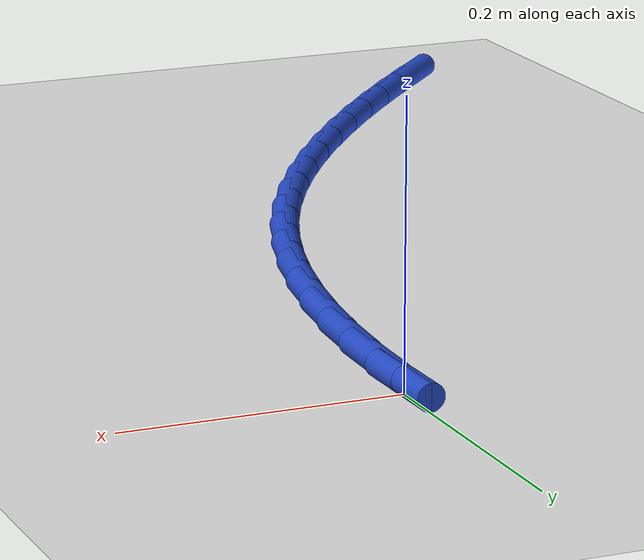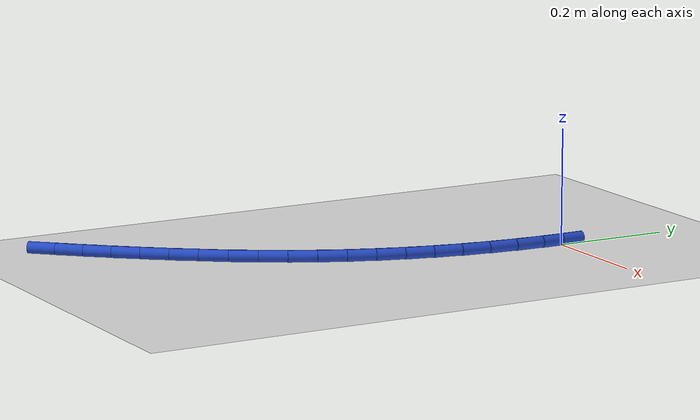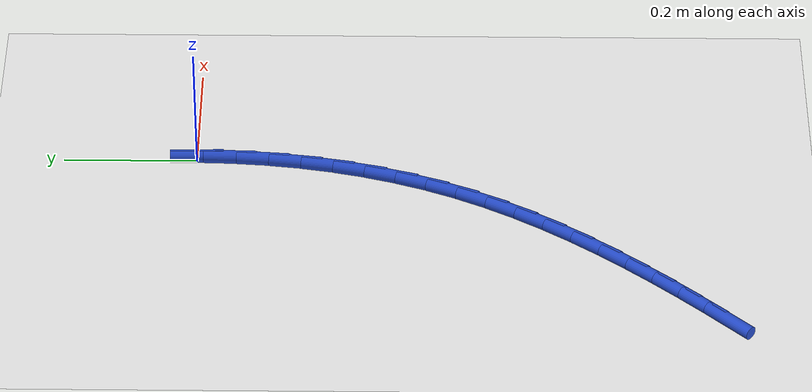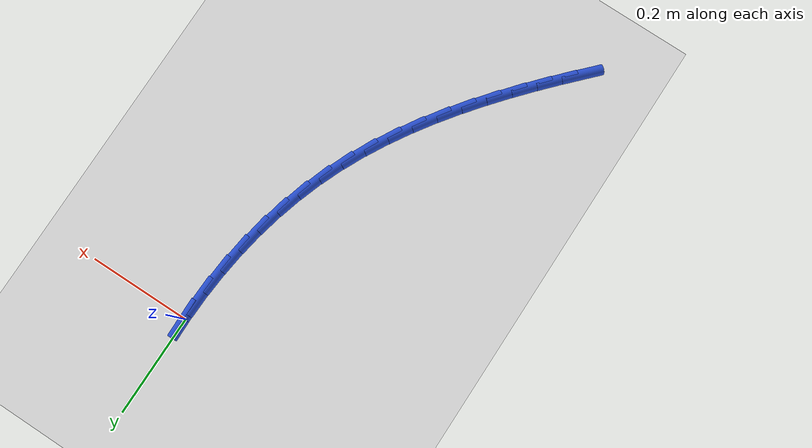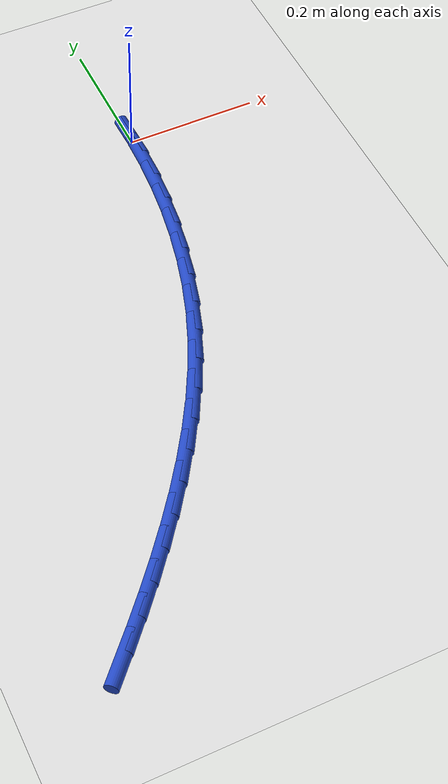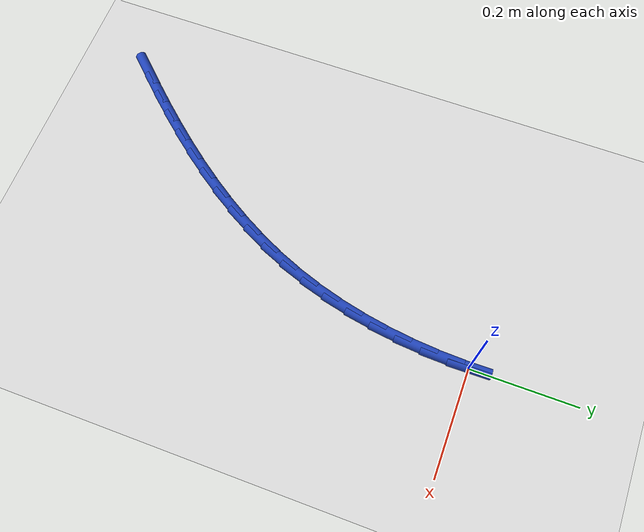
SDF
<sdf version="1.6">
 <world name="default">
  <model name="ground_plane">
   <static>1</static>
   <link name="link">
    <collision name="collision">
     <geometry><plane><normal>0 0 1</normal><size>100 100</size></plane></geometry>
     <surface><friction><ode><mu>100</mu><mu2>50</mu2></ode></friction></surface>
    </collision>
    <visual name="visual">
     <cast_shadows>0</cast_shadows>
     <geometry><plane><normal>0 0 1</normal><size>100 100</size></plane></geometry>
     <material>
      <script><uri>file://media/materials/scripts/gazebo.material</uri><name>Gazebo/WhiteGlow</name></script>
     </material>
    </visual>
   </link>
  </model>
  <model name="line">
   <link name="link_0">
    <pose>8.673617379884035e-18 4.163336342344337e-17 0.01 0 1.57 -1.5541414784926617</pose>
    <collision name="collision">
     <geometry><cylinder><radius>0.01</radius><length>0.08</length></cylinder></geometry>
    </collision>
    <visual name="visual">
     <material>
      <script><name>Gazebo/Blue</name><uri>file://media/materials/scripts/gazebo.material</uri></script>
     </material>
     <geometry><cylinder><radius>0.01</radius><length>0.08</length></cylinder></geometry>
    </visual>
   </link>
   <link name="link_142">
    <pose>-0.3596862331177852 -0.7802362884597559 0.01 0 1.57 0.8203023390210702</pose>
    <collision name="collision">
     <geometry><cylinder><radius>0.01</radius><length>0.08</length></cylinder></geometry>
    </collision>
    <visual name="visual">
     <material>
      <script><name>Gazebo/Blue</name><uri>file://media/materials/scripts/gazebo.material</uri></script>
     </material>
     <geometry><cylinder><radius>0.01</radius><length>0.08</length></cylinder></geometry>
    </visual>
   </link>
   <link name="link_143">
    <pose>-0.32671568175988686 -0.7448798716243616 0.01 0 1.57 0.840071527943504</pose>
    <collision name="collision">
     <geometry><cylinder><radius>0.01</radius><length>0.08</length></cylinder></geometry>
    </collision>
    <visual name="visual">
     <material>
      <script><name>Gazebo/Blue</name><uri>file://media/materials/scripts/gazebo.material</uri></script>
     </material>
     <geometry><cylinder><radius>0.01</radius><length>0.08</length></cylinder></geometry>
    </visual>
   </link>
   <link name="link_144">
    <pose>-0.2942754433908841 -0.7086832834738395 0.01 0 1.57 0.8618354914209037</pose>
    <collision name="collision">
     <geometry><cylinder><radius>0.01</radius><length>0.08</length></cylinder></geometry>
    </collision>
    <visual name="visual">
     <material>
      <script><name>Gazebo/Blue</name><uri>file://media/materials/scripts/gazebo.material</uri></script>
     </material>
     <geometry><cylinder><radius>0.01</radius><length>0.08</length></cylinder></geometry>
    </visual>
   </link>
   <link name="link_145">
    <pose>-0.26242274861507 -0.6715469581684389 0.01 0 1.57 0.8871132025785358</pose>
    <collision name="collision">
     <geometry><cylinder><radius>0.01</radius><length>0.08</length></cylinder></geometry>
    </collision>
    <visual name="visual">
     <material>
      <script><name>Gazebo/Blue</name><uri>file://media/materials/scripts/gazebo.material</uri></script>
     </material>
     <geometry><cylinder><radius>0.01</radius><length>0.08</length></cylinder></geometry>
    </visual>
   </link>
   <link name="link_146">
    <pose>-0.2313732111577028 -0.6334386697791214 0.01 0 1.57 0.9164852096769465</pose>
    <collision name="collision">
     <geometry><cylinder><radius>0.01</radius><length>0.08</length></cylinder></geometry>
    </collision>
    <visual name="visual">
     <material>
      <script><name>Gazebo/Blue</name><uri>file://media/materials/scripts/gazebo.material</uri></script>
     </material>
     <geometry><cylinder><radius>0.01</radius><length>0.08</length></cylinder></geometry>
    </visual>
   </link>
   <link name="link_147">
    <pose>-0.20138747882641664 -0.5943453395629118 0.01 0 1.57 0.9501418688128811</pose>
    <collision name="collision">
     <geometry><cylinder><radius>0.01</radius><length>0.08</length></cylinder></geometry>
    </collision>
    <visual name="visual">
     <material>
      <script><name>Gazebo/Blue</name><uri>file://media/materials/scripts/gazebo.material</uri></script>
     </material>
     <geometry><cylinder><radius>0.01</radius><length>0.08</length></cylinder></geometry>
    </visual>
   </link>
   <link name="link_148">
    <pose>-0.17272620258232022 -0.5542538901175994 0.01 0 1.57 0.9882979111150825</pose>
    <collision name="collision">
     <geometry><cylinder><radius>0.01</radius><length>0.08</length></cylinder></geometry>
    </collision>
    <visual name="visual">
     <material>
      <script><name>Gazebo/Blue</name><uri>file://media/materials/scripts/gazebo.material</uri></script>
     </material>
     <geometry><cylinder><radius>0.01</radius><length>0.08</length></cylinder></geometry>
    </visual>
   </link>
   <link name="link_149">
    <pose>-0.1456500333865227 -0.5131512440409746 0.01 0 1.57 1.0311755820769408</pose>
    <collision name="collision">
     <geometry><cylinder><radius>0.01</radius><length>0.08</length></cylinder></geometry>
    </collision>
    <visual name="visual">
     <material>
      <script><name>Gazebo/Blue</name><uri>file://media/materials/scripts/gazebo.material</uri></script>
     </material>
     <geometry><cylinder><radius>0.01</radius><length>0.08</length></cylinder></geometry>
    </visual>
   </link>
   <link name="link_150">
    <pose>-0.12041962220013311 -0.471024323930827 0.01 0 1.57 1.078982014796212</pose>
    <collision name="collision">
     <geometry><cylinder><radius>0.01</radius><length>0.08</length></cylinder></geometry>
    </collision>
    <visual name="visual">
     <material>
      <script><name>Gazebo/Blue</name><uri>file://media/materials/scripts/gazebo.material</uri></script>
     </material>
     <geometry><cylinder><radius>0.01</radius><length>0.08</length></cylinder></geometry>
    </visual>
   </link>
   <link name="link_151">
    <pose>-0.09729561998426033 -0.42786005238494623 0.01 0 1.57 1.1318795137896147</pose>
    <collision name="collision">
     <geometry><cylinder><radius>0.01</radius><length>0.08</length></cylinder></geometry>
    </collision>
    <visual name="visual">
     <material>
      <script><name>Gazebo/Blue</name><uri>file://media/materials/scripts/gazebo.material</uri></script>
     </material>
     <geometry><cylinder><radius>0.01</radius><length>0.08</length></cylinder></geometry>
    </visual>
   </link>
   <link name="link_152">
    <pose>-0.07653867770001427 -0.3836453520011238 0.01 0 1.57 1.1888681868961979</pose>
    <collision name="collision">
     <geometry><cylinder><radius>0.01</radius><length>0.08</length></cylinder></geometry>
    </collision>
    <visual name="visual">
     <material>
      <script><name>Gazebo/Blue</name><uri>file://media/materials/scripts/gazebo.material</uri></script>
     </material>
     <geometry><cylinder><radius>0.01</radius><length>0.08</length></cylinder></geometry>
    </visual>
   </link>
   <link name="link_153">
    <pose>-0.058359684587225596 -0.3383845907260217 0.01 0 1.57 1.2452906815750544</pose>
    <collision name="collision">
     <geometry><cylinder><radius>0.01</radius><length>0.08</length></cylinder></geometry>
    </collision>
    <visual name="visual">
     <material>
      <script><name>Gazebo/Blue</name><uri>file://media/materials/scripts/gazebo.material</uri></script>
     </material>
     <geometry><cylinder><radius>0.01</radius><length>0.08</length></cylinder></geometry>
    </visual>
   </link>
   <link name="link_154">
    <pose>-0.04275722238113137 -0.2921565667790262 0.01 0 1.57 1.2998187478905963</pose>
    <collision name="collision">
     <geometry><cylinder><radius>0.01</radius><length>0.08</length></cylinder></geometry>
    </collision>
    <visual name="visual">
     <material>
      <script><name>Gazebo/Blue</name><uri>file://media/materials/scripts/gazebo.material</uri></script>
     </material>
     <geometry><cylinder><radius>0.01</radius><length>0.08</length></cylinder></geometry>
    </visual>
   </link>
   <link name="link_155">
    <pose>-0.029673262872286093 -0.24505992456267975 0.01 0 1.57 1.3523969590606932</pose>
    <collision name="collision">
     <geometry><cylinder><radius>0.01</radius><length>0.08</length></cylinder></geometry>
    </collision>
    <visual name="visual">
     <material>
      <script><name>Gazebo/Blue</name><uri>file://media/materials/scripts/gazebo.material</uri></script>
     </material>
     <geometry><cylinder><radius>0.01</radius><length>0.08</length></cylinder></geometry>
    </visual>
   </link>
   <link name="link_156">
    <pose>-0.019049777323924072 -0.1971933086643905 0.01 0 1.57 1.4030151613881314</pose>
    <collision name="collision">
     <geometry><cylinder><radius>0.01</radius><length>0.08</length></cylinder></geometry>
    </collision>
    <visual name="visual">
     <material>
      <script><name>Gazebo/Blue</name><uri>file://media/materials/scripts/gazebo.material</uri></script>
     </material>
     <geometry><cylinder><radius>0.01</radius><length>0.08</length></cylinder></geometry>
    </visual>
   </link>
   <link name="link_157">
    <pose>-0.010828736999280136 -0.14865536367156942 0.01 0 1.57 1.4517016660807132</pose>
    <collision name="collision">
     <geometry><cylinder><radius>0.01</radius><length>0.08</length></cylinder></geometry>
    </collision>
    <visual name="visual">
     <material>
      <script><name>Gazebo/Blue</name><uri>file://media/materials/scripts/gazebo.material</uri></script>
     </material>
     <geometry><cylinder><radius>0.01</radius><length>0.08</length></cylinder></geometry>
    </visual>
   </link>
   <link name="link_158">
    <pose>-0.004952113161588506 -0.09954473417162447 0.01 0 1.57 1.498516292054893</pose>
    <collision name="collision">
     <geometry><cylinder><radius>0.01</radius><length>0.08</length></cylinder></geometry>
    </collision>
    <visual name="visual">
     <material>
      <script><name>Gazebo/Blue</name><uri>file://media/materials/scripts/gazebo.material</uri></script>
     </material>
     <geometry><cylinder><radius>0.01</radius><length>0.08</length></cylinder></geometry>
    </visual>
   </link>
   <link name="link_159">
    <pose>-0.0013618770740836412 -0.0499600647519649 0.01 0 1.57 1.5435437620165595</pose>
    <collision name="collision">
     <geometry><cylinder><radius>0.01</radius><length>0.08</length></cylinder></geometry>
    </collision>
    <visual name="visual">
     <material>
      <script><name>Gazebo/Blue</name><uri>file://media/materials/scripts/gazebo.material</uri></script>
     </material>
     <geometry><cylinder><radius>0.01</radius><length>0.08</length></cylinder></geometry>
    </visual>
   </link>
   <link name="link_160">
    <pose>2.2551405187698492e-17 2.636779683484747e-16 0.01 0 1.57 -1.5547048724609562</pose>
    <collision name="collision">
     <geometry><cylinder><radius>0.01</radius><length>0.08</length></cylinder></geometry>
    </collision>
    <visual name="visual">
     <material>
      <script><name>Gazebo/Blue</name><uri>file://media/materials/scripts/gazebo.material</uri></script>
     </material>
     <geometry><cylinder><radius>0.01</radius><length>0.08</length></cylinder></geometry>
    </visual>
   </link>
  </model>
 </world>
</sdf>
